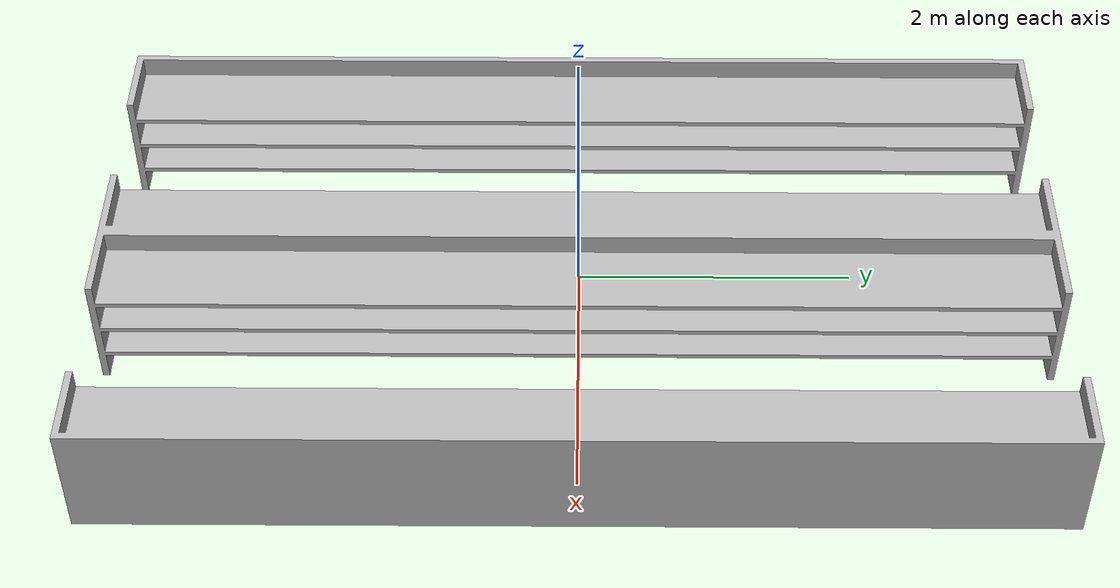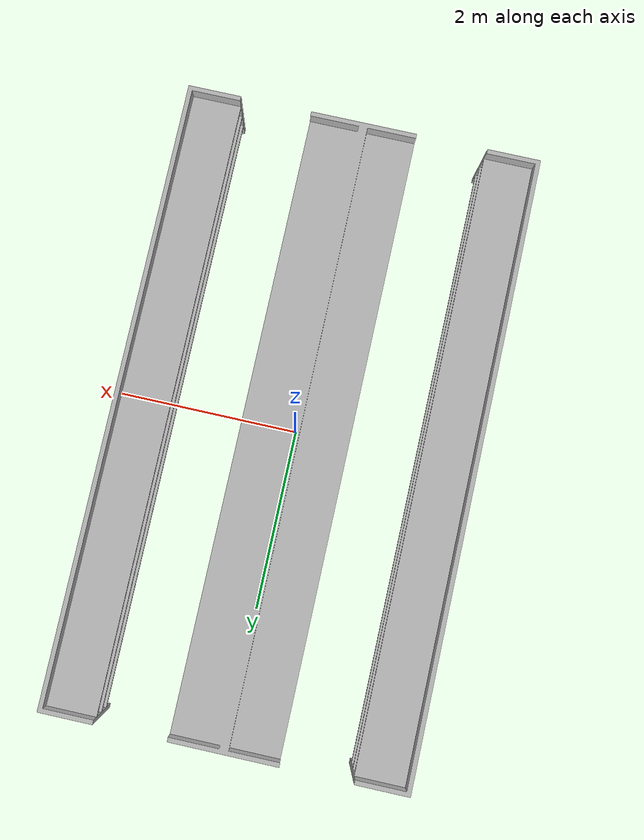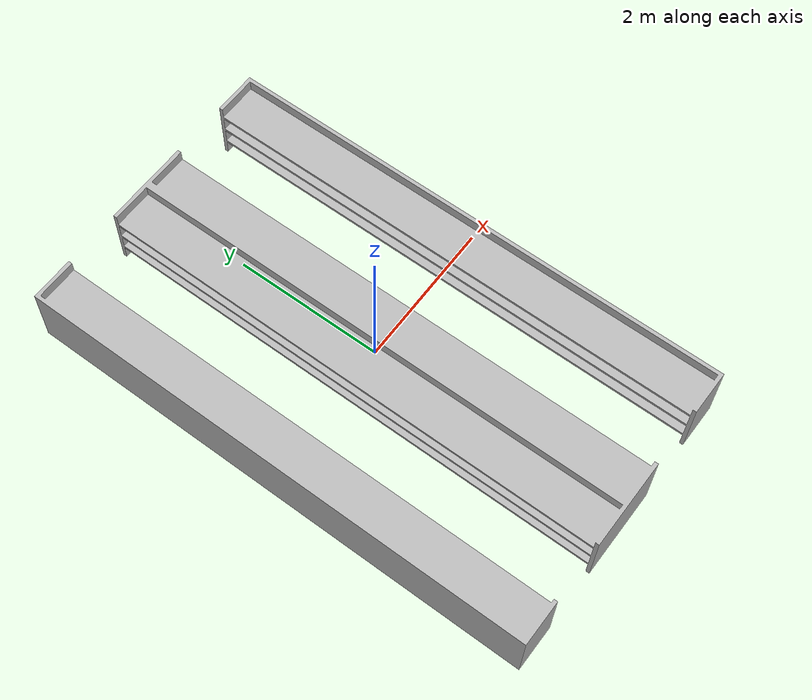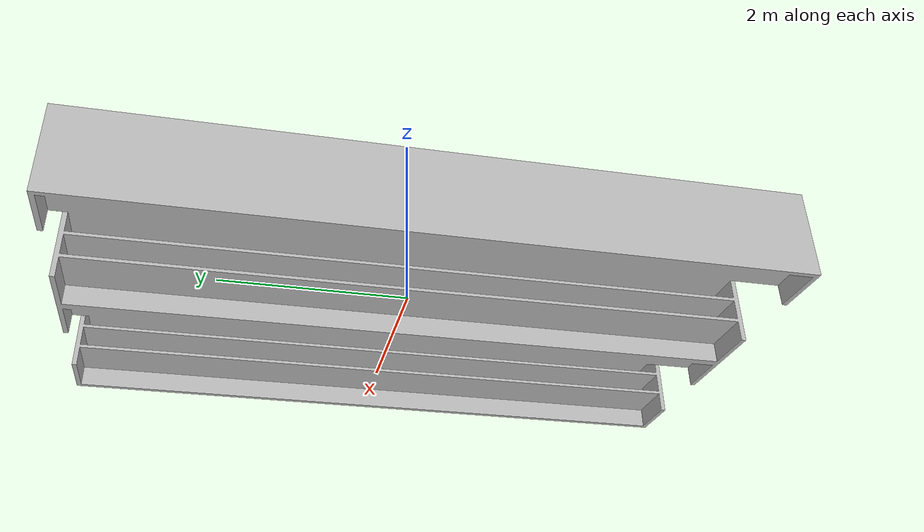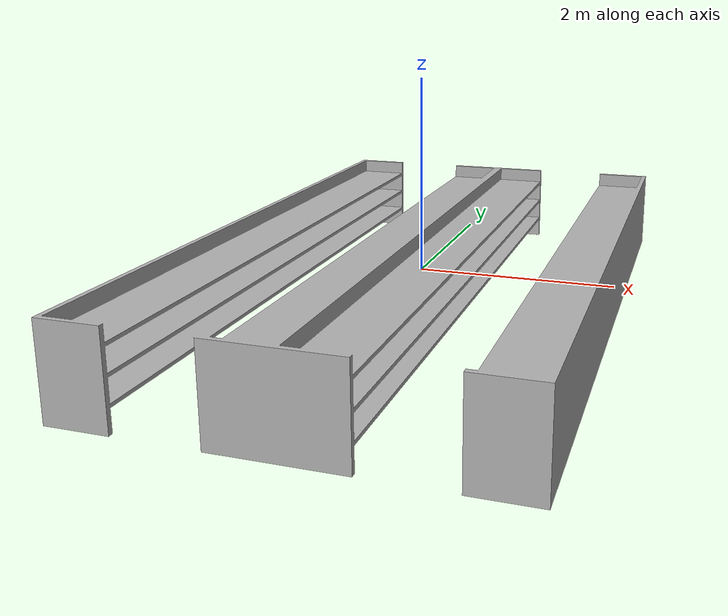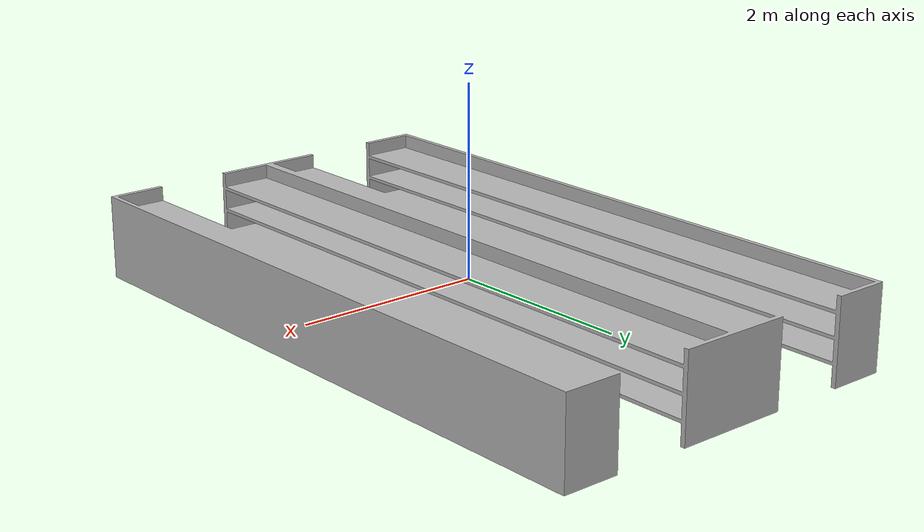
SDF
<?xml version="1.0" ?>
<sdf version="1.6">
  <model name="New_shelf">
    <static>true</static>
    <link name="link">
      <!-- Visual -->
      <visual name="visual">
        <geometry>
          <mesh>
            <uri>model://New_shelf/Meshes/New_shelf.dae</uri>
          </mesh>
        </geometry>
      </visual>

      <!-- Collision -->
      <collision name="collision">
        <geometry>
          <mesh>
            <uri>model://New_shelf/Meshes/New_shelf.dae</uri>
          </mesh>
        </geometry>
      </collision>

      <!-- Inertial -->
      <inertial>
        <mass>1.0</mass>
        <inertia>
          <ixx>0.01</ixx>
          <ixy>0.0</ixy>
          <ixz>0.0</ixz>
          <iyy>0.01</iyy>
          <iyz>0.0</iyz>
          <izz>0.01</izz>
        </inertia>
      </inertial>

      <!-- Pose -->
      <pose>0 0 0 0 0 0</pose>

    </link>
  </model>
</sdf>
